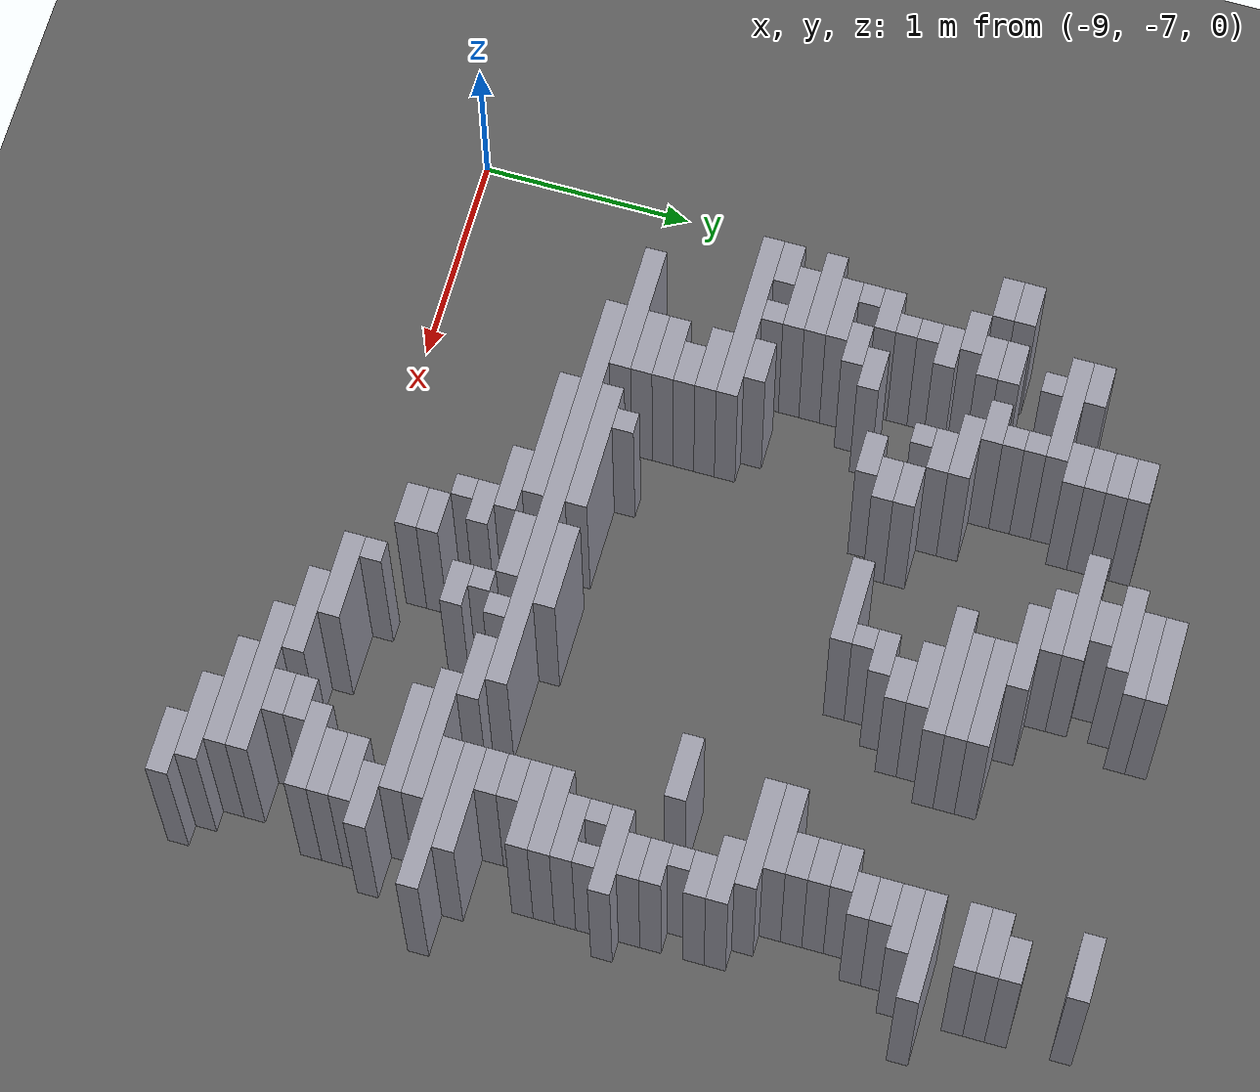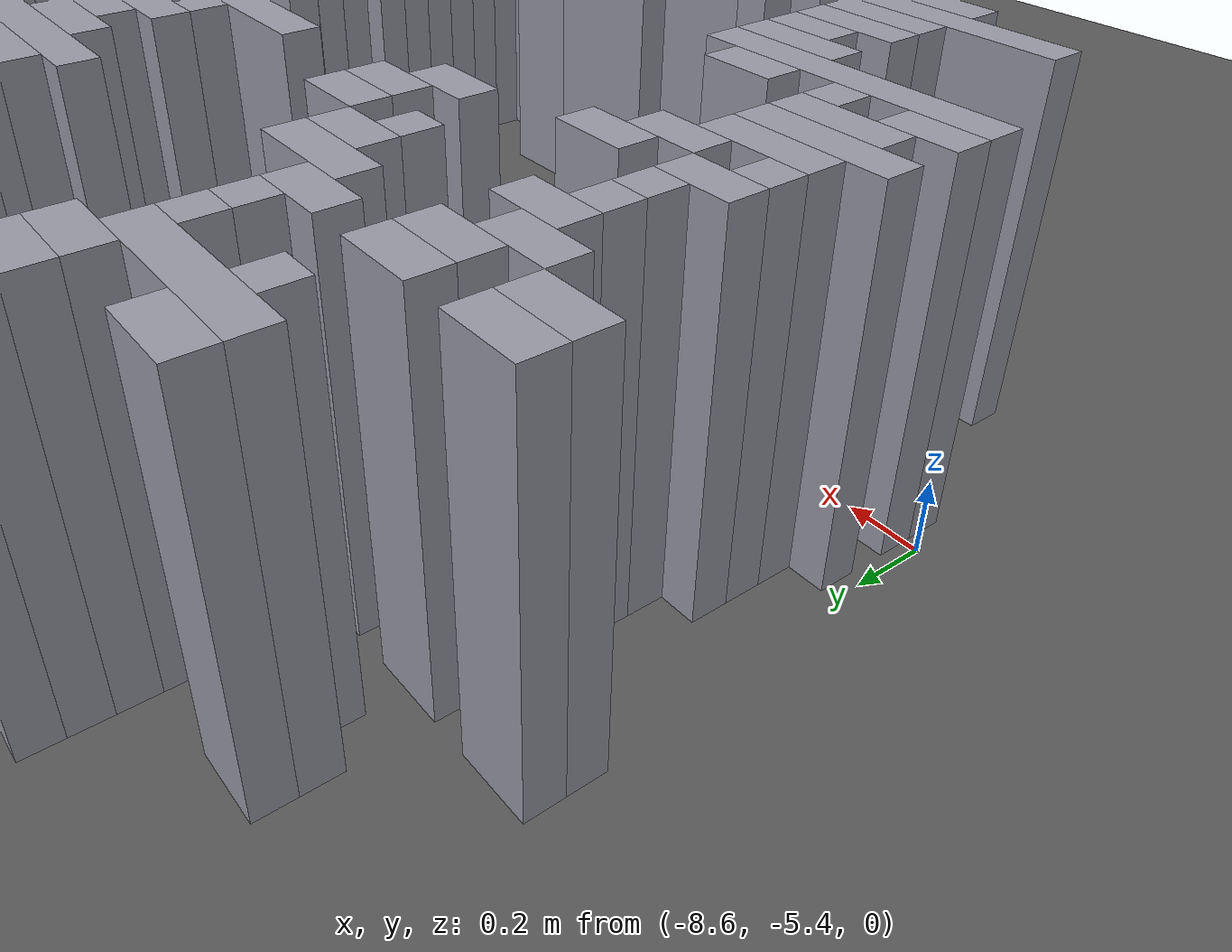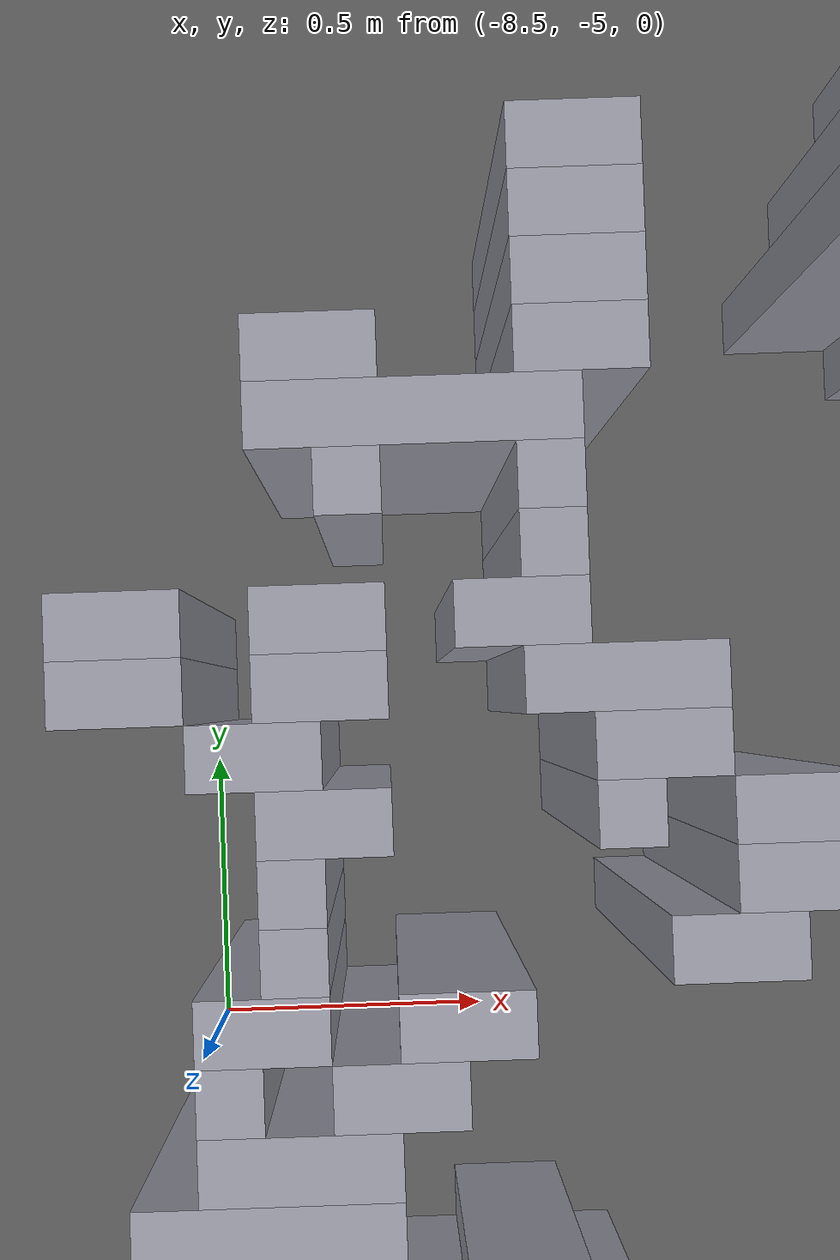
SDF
<sdf version="1.8">
 <world name="dimi">
  <model name="ground">
   <static>true</static>
   <link name="ground_link">
    <collision name="c"><geometry><plane><normal>0 0 1</normal><size>60 60</size></plane></geometry></collision>
    <visual name="v">
     <geometry><plane><normal>0 0 1</normal><size>60 60</size></plane></geometry>
     <material><ambient>0.3 0.3 0.3 1</ambient><diffuse>0.35 0.35 0.35 1</diffuse></material>
    </visual>
   </link>
  </model>
  <model name="walls">
   <static>true</static>
   <link name="wall_341">
    <pose>-7.0610 -3.2710 0.5000 0 0 0</pose>
    <collision name="c"><geometry><box><size>0.4000 0.1000 1.0000</size></box></geometry></collision>
    <visual name="v">
     <geometry><box><size>0.4000 0.1000 1.0000</size></box></geometry>
     <material><ambient>0.5 0.5 0.55 1</ambient><diffuse>0.6 0.6 0.65 1</diffuse></material>
    </visual>
   </link>
   <link name="wall_342">
    <pose>-5.6110 -3.2710 0.5000 0 0 0</pose>
    <collision name="c"><geometry><box><size>0.3000 0.1000 1.0000</size></box></geometry></collision>
    <visual name="v">
     <geometry><box><size>0.3000 0.1000 1.0000</size></box></geometry>
     <material><ambient>0.5 0.5 0.55 1</ambient><diffuse>0.6 0.6 0.65 1</diffuse></material>
    </visual>
   </link>
   <link name="wall_345">
    <pose>-7.0610 -3.3710 0.5000 0 0 0</pose>
    <collision name="c"><geometry><box><size>0.4000 0.1000 1.0000</size></box></geometry></collision>
    <visual name="v">
     <geometry><box><size>0.4000 0.1000 1.0000</size></box></geometry>
     <material><ambient>0.5 0.5 0.55 1</ambient><diffuse>0.6 0.6 0.65 1</diffuse></material>
    </visual>
   </link>
   <link name="wall_351">
    <pose>-7.1610 -3.4710 0.5000 0 0 0</pose>
    <collision name="c"><geometry><box><size>0.4000 0.1000 1.0000</size></box></geometry></collision>
    <visual name="v">
     <geometry><box><size>0.4000 0.1000 1.0000</size></box></geometry>
     <material><ambient>0.5 0.5 0.55 1</ambient><diffuse>0.6 0.6 0.65 1</diffuse></material>
    </visual>
   </link>
   <link name="wall_357">
    <pose>-7.8610 -3.5710 0.5000 0 0 0</pose>
    <collision name="c"><geometry><box><size>0.2000 0.1000 1.0000</size></box></geometry></collision>
    <visual name="v">
     <geometry><box><size>0.2000 0.1000 1.0000</size></box></geometry>
     <material><ambient>0.5 0.5 0.55 1</ambient><diffuse>0.6 0.6 0.65 1</diffuse></material>
    </visual>
   </link>
   <link name="wall_358">
    <pose>-7.1610 -3.5710 0.5000 0 0 0</pose>
    <collision name="c"><geometry><box><size>0.2000 0.1000 1.0000</size></box></geometry></collision>
    <visual name="v">
     <geometry><box><size>0.2000 0.1000 1.0000</size></box></geometry>
     <material><ambient>0.5 0.5 0.55 1</ambient><diffuse>0.6 0.6 0.65 1</diffuse></material>
    </visual>
   </link>
   <link name="wall_359">
    <pose>-5.5610 -3.5710 0.5000 0 0 0</pose>
    <collision name="c"><geometry><box><size>0.2000 0.1000 1.0000</size></box></geometry></collision>
    <visual name="v">
     <geometry><box><size>0.2000 0.1000 1.0000</size></box></geometry>
     <material><ambient>0.5 0.5 0.55 1</ambient><diffuse>0.6 0.6 0.65 1</diffuse></material>
    </visual>
   </link>
   <link name="wall_364">
    <pose>-7.8610 -3.6710 0.5000 0 0 0</pose>
    <collision name="c"><geometry><box><size>0.2000 0.1000 1.0000</size></box></geometry></collision>
    <visual name="v">
     <geometry><box><size>0.2000 0.1000 1.0000</size></box></geometry>
     <material><ambient>0.5 0.5 0.55 1</ambient><diffuse>0.6 0.6 0.65 1</diffuse></material>
    </visual>
   </link>
   <link name="wall_365">
    <pose>-7.2110 -3.6710 0.5000 0 0 0</pose>
    <collision name="c"><geometry><box><size>0.5000 0.1000 1.0000</size></box></geometry></collision>
    <visual name="v">
     <geometry><box><size>0.5000 0.1000 1.0000</size></box></geometry>
     <material><ambient>0.5 0.5 0.55 1</ambient><diffuse>0.6 0.6 0.65 1</diffuse></material>
    </visual>
   </link>
   <link name="wall_366">
    <pose>-5.6110 -3.6710 0.5000 0 0 0</pose>
    <collision name="c"><geometry><box><size>0.3000 0.1000 1.0000</size></box></geometry></collision>
    <visual name="v">
     <geometry><box><size>0.3000 0.1000 1.0000</size></box></geometry>
     <material><ambient>0.5 0.5 0.55 1</ambient><diffuse>0.6 0.6 0.65 1</diffuse></material>
    </visual>
   </link>
   <link name="wall_371">
    <pose>-7.8610 -3.7710 0.5000 0 0 0</pose>
    <collision name="c"><geometry><box><size>0.2000 0.1000 1.0000</size></box></geometry></collision>
    <visual name="v">
     <geometry><box><size>0.2000 0.1000 1.0000</size></box></geometry>
     <material><ambient>0.5 0.5 0.55 1</ambient><diffuse>0.6 0.6 0.65 1</diffuse></material>
    </visual>
   </link>
   <link name="wall_372">
    <pose>-7.1110 -3.7710 0.5000 0 0 0</pose>
    <collision name="c"><geometry><box><size>0.3000 0.1000 1.0000</size></box></geometry></collision>
    <visual name="v">
     <geometry><box><size>0.3000 0.1000 1.0000</size></box></geometry>
     <material><ambient>0.5 0.5 0.55 1</ambient><diffuse>0.6 0.6 0.65 1</diffuse></material>
    </visual>
   </link>
   <link name="wall_373">
    <pose>-5.6110 -3.7710 0.5000 0 0 0</pose>
    <collision name="c"><geometry><box><size>0.3000 0.1000 1.0000</size></box></geometry></collision>
    <visual name="v">
     <geometry><box><size>0.3000 0.1000 1.0000</size></box></geometry>
     <material><ambient>0.5 0.5 0.55 1</ambient><diffuse>0.6 0.6 0.65 1</diffuse></material>
    </visual>
   </link>
   <link name="wall_379">
    <pose>-8.2610 -3.8710 0.5000 0 0 0</pose>
    <collision name="c"><geometry><box><size>0.2000 0.1000 1.0000</size></box></geometry></collision>
    <visual name="v">
     <geometry><box><size>0.2000 0.1000 1.0000</size></box></geometry>
     <material><ambient>0.5 0.5 0.55 1</ambient><diffuse>0.6 0.6 0.65 1</diffuse></material>
    </visual>
   </link>
   <link name="wall_380">
    <pose>-7.8610 -3.8710 0.5000 0 0 0</pose>
    <collision name="c"><geometry><box><size>0.2000 0.1000 1.0000</size></box></geometry></collision>
    <visual name="v">
     <geometry><box><size>0.2000 0.1000 1.0000</size></box></geometry>
     <material><ambient>0.5 0.5 0.55 1</ambient><diffuse>0.6 0.6 0.65 1</diffuse></material>
    </visual>
   </link>
   <link name="wall_381">
    <pose>-6.9610 -3.8710 0.5000 0 0 0</pose>
    <collision name="c"><geometry><box><size>0.4000 0.1000 1.0000</size></box></geometry></collision>
    <visual name="v">
     <geometry><box><size>0.4000 0.1000 1.0000</size></box></geometry>
     <material><ambient>0.5 0.5 0.55 1</ambient><diffuse>0.6 0.6 0.65 1</diffuse></material>
    </visual>
   </link>
   <link name="wall_387">
    <pose>-8.1110 -3.9710 0.5000 0 0 0</pose>
    <collision name="c"><geometry><box><size>0.5000 0.1000 1.0000</size></box></geometry></collision>
    <visual name="v">
     <geometry><box><size>0.5000 0.1000 1.0000</size></box></geometry>
     <material><ambient>0.5 0.5 0.55 1</ambient><diffuse>0.6 0.6 0.65 1</diffuse></material>
    </visual>
   </link>
   <link name="wall_388">
    <pose>-6.7110 -3.9710 0.5000 0 0 0</pose>
    <collision name="c"><geometry><box><size>0.5000 0.1000 1.0000</size></box></geometry></collision>
    <visual name="v">
     <geometry><box><size>0.5000 0.1000 1.0000</size></box></geometry>
     <material><ambient>0.5 0.5 0.55 1</ambient><diffuse>0.6 0.6 0.65 1</diffuse></material>
    </visual>
   </link>
   <link name="wall_389">
    <pose>-5.5110 -3.9710 0.5000 0 0 0</pose>
    <collision name="c"><geometry><box><size>0.5000 0.1000 1.0000</size></box></geometry></collision>
    <visual name="v">
     <geometry><box><size>0.5000 0.1000 1.0000</size></box></geometry>
     <material><ambient>0.5 0.5 0.55 1</ambient><diffuse>0.6 0.6 0.65 1</diffuse></material>
    </visual>
   </link>
   <link name="wall_394">
    <pose>-8.2110 -4.0710 0.5000 0 0 0</pose>
    <collision name="c"><geometry><box><size>0.1000 0.1000 1.0000</size></box></geometry></collision>
    <visual name="v">
     <geometry><box><size>0.1000 0.1000 1.0000</size></box></geometry>
     <material><ambient>0.5 0.5 0.55 1</ambient><diffuse>0.6 0.6 0.65 1</diffuse></material>
    </visual>
   </link>
   <link name="wall_395">
    <pose>-7.9110 -4.0710 0.5000 0 0 0</pose>
    <collision name="c"><geometry><box><size>0.1000 0.1000 1.0000</size></box></geometry></collision>
    <visual name="v">
     <geometry><box><size>0.1000 0.1000 1.0000</size></box></geometry>
     <material><ambient>0.5 0.5 0.55 1</ambient><diffuse>0.6 0.6 0.65 1</diffuse></material>
    </visual>
   </link>
   <link name="wall_396">
    <pose>-6.7110 -4.0710 0.5000 0 0 0</pose>
    <collision name="c"><geometry><box><size>0.5000 0.1000 1.0000</size></box></geometry></collision>
    <visual name="v">
     <geometry><box><size>0.5000 0.1000 1.0000</size></box></geometry>
     <material><ambient>0.5 0.5 0.55 1</ambient><diffuse>0.6 0.6 0.65 1</diffuse></material>
    </visual>
   </link>
   <link name="wall_397">
    <pose>-5.6110 -4.0710 0.5000 0 0 0</pose>
    <collision name="c"><geometry><box><size>0.3000 0.1000 1.0000</size></box></geometry></collision>
    <visual name="v">
     <geometry><box><size>0.3000 0.1000 1.0000</size></box></geometry>
     <material><ambient>0.5 0.5 0.55 1</ambient><diffuse>0.6 0.6 0.65 1</diffuse></material>
    </visual>
   </link>
   <link name="wall_401">
    <pose>-7.9110 -4.1710 0.5000 0 0 0</pose>
    <collision name="c"><geometry><box><size>0.1000 0.1000 1.0000</size></box></geometry></collision>
    <visual name="v">
     <geometry><box><size>0.1000 0.1000 1.0000</size></box></geometry>
     <material><ambient>0.5 0.5 0.55 1</ambient><diffuse>0.6 0.6 0.65 1</diffuse></material>
    </visual>
   </link>
   <link name="wall_402">
    <pose>-6.7610 -4.1710 0.5000 0 0 0</pose>
    <collision name="c"><geometry><box><size>0.6000 0.1000 1.0000</size></box></geometry></collision>
    <visual name="v">
     <geometry><box><size>0.6000 0.1000 1.0000</size></box></geometry>
     <material><ambient>0.5 0.5 0.55 1</ambient><diffuse>0.6 0.6 0.65 1</diffuse></material>
    </visual>
   </link>
   <link name="wall_403">
    <pose>-5.6610 -4.1710 0.5000 0 0 0</pose>
    <collision name="c"><geometry><box><size>0.2000 0.1000 1.0000</size></box></geometry></collision>
    <visual name="v">
     <geometry><box><size>0.2000 0.1000 1.0000</size></box></geometry>
     <material><ambient>0.5 0.5 0.55 1</ambient><diffuse>0.6 0.6 0.65 1</diffuse></material>
    </visual>
   </link>
   <link name="wall_407">
    <pose>-8.5610 -4.2710 0.5000 0 0 0</pose>
    <collision name="c"><geometry><box><size>0.2000 0.1000 1.0000</size></box></geometry></collision>
    <visual name="v">
     <geometry><box><size>0.2000 0.1000 1.0000</size></box></geometry>
     <material><ambient>0.5 0.5 0.55 1</ambient><diffuse>0.6 0.6 0.65 1</diffuse></material>
    </visual>
   </link>
   <link name="wall_408">
    <pose>-8.2610 -4.2710 0.5000 0 0 0</pose>
    <collision name="c"><geometry><box><size>0.2000 0.1000 1.0000</size></box></geometry></collision>
    <visual name="v">
     <geometry><box><size>0.2000 0.1000 1.0000</size></box></geometry>
     <material><ambient>0.5 0.5 0.55 1</ambient><diffuse>0.6 0.6 0.65 1</diffuse></material>
    </visual>
   </link>
   <link name="wall_409">
    <pose>-7.9610 -4.2710 0.5000 0 0 0</pose>
    <collision name="c"><geometry><box><size>0.2000 0.1000 1.0000</size></box></geometry></collision>
    <visual name="v">
     <geometry><box><size>0.2000 0.1000 1.0000</size></box></geometry>
     <material><ambient>0.5 0.5 0.55 1</ambient><diffuse>0.6 0.6 0.65 1</diffuse></material>
    </visual>
   </link>
   <link name="wall_410">
    <pose>-6.7110 -4.2710 0.5000 0 0 0</pose>
    <collision name="c"><geometry><box><size>0.3000 0.1000 1.0000</size></box></geometry></collision>
    <visual name="v">
     <geometry><box><size>0.3000 0.1000 1.0000</size></box></geometry>
     <material><ambient>0.5 0.5 0.55 1</ambient><diffuse>0.6 0.6 0.65 1</diffuse></material>
    </visual>
   </link>
   <link name="wall_411">
    <pose>-5.6610 -4.2710 0.5000 0 0 0</pose>
    <collision name="c"><geometry><box><size>0.2000 0.1000 1.0000</size></box></geometry></collision>
    <visual name="v">
     <geometry><box><size>0.2000 0.1000 1.0000</size></box></geometry>
     <material><ambient>0.5 0.5 0.55 1</ambient><diffuse>0.6 0.6 0.65 1</diffuse></material>
    </visual>
   </link>
   <link name="wall_414">
    <pose>-8.5610 -4.3710 0.5000 0 0 0</pose>
    <collision name="c"><geometry><box><size>0.2000 0.1000 1.0000</size></box></geometry></collision>
    <visual name="v">
     <geometry><box><size>0.2000 0.1000 1.0000</size></box></geometry>
     <material><ambient>0.5 0.5 0.55 1</ambient><diffuse>0.6 0.6 0.65 1</diffuse></material>
    </visual>
   </link>
   <link name="wall_415">
    <pose>-8.2610 -4.3710 0.5000 0 0 0</pose>
    <collision name="c"><geometry><box><size>0.2000 0.1000 1.0000</size></box></geometry></collision>
    <visual name="v">
     <geometry><box><size>0.2000 0.1000 1.0000</size></box></geometry>
     <material><ambient>0.5 0.5 0.55 1</ambient><diffuse>0.6 0.6 0.65 1</diffuse></material>
    </visual>
   </link>
   <link name="wall_416">
    <pose>-7.8110 -4.3710 0.5000 0 0 0</pose>
    <collision name="c"><geometry><box><size>0.3000 0.1000 1.0000</size></box></geometry></collision>
    <visual name="v">
     <geometry><box><size>0.3000 0.1000 1.0000</size></box></geometry>
     <material><ambient>0.5 0.5 0.55 1</ambient><diffuse>0.6 0.6 0.65 1</diffuse></material>
    </visual>
   </link>
   <link name="wall_417">
    <pose>-6.6610 -4.3710 0.5000 0 0 0</pose>
    <collision name="c"><geometry><box><size>0.2000 0.1000 1.0000</size></box></geometry></collision>
    <visual name="v">
     <geometry><box><size>0.2000 0.1000 1.0000</size></box></geometry>
     <material><ambient>0.5 0.5 0.55 1</ambient><diffuse>0.6 0.6 0.65 1</diffuse></material>
    </visual>
   </link>
   <link name="wall_418">
    <pose>-5.7610 -4.3710 0.5000 0 0 0</pose>
    <collision name="c"><geometry><box><size>0.2000 0.1000 1.0000</size></box></geometry></collision>
    <visual name="v">
     <geometry><box><size>0.2000 0.1000 1.0000</size></box></geometry>
     <material><ambient>0.5 0.5 0.55 1</ambient><diffuse>0.6 0.6 0.65 1</diffuse></material>
    </visual>
   </link>
   <link name="wall_422">
    <pose>-8.3610 -4.4710 0.5000 0 0 0</pose>
    <collision name="c"><geometry><box><size>0.2000 0.1000 1.0000</size></box></geometry></collision>
    <visual name="v">
     <geometry><box><size>0.2000 0.1000 1.0000</size></box></geometry>
     <material><ambient>0.5 0.5 0.55 1</ambient><diffuse>0.6 0.6 0.65 1</diffuse></material>
    </visual>
   </link>
   <link name="wall_423">
    <pose>-7.7610 -4.4710 0.5000 0 0 0</pose>
    <collision name="c"><geometry><box><size>0.2000 0.1000 1.0000</size></box></geometry></collision>
    <visual name="v">
     <geometry><box><size>0.2000 0.1000 1.0000</size></box></geometry>
     <material><ambient>0.5 0.5 0.55 1</ambient><diffuse>0.6 0.6 0.65 1</diffuse></material>
    </visual>
   </link>
   <link name="wall_424">
    <pose>-6.7610 -4.4710 0.5000 0 0 0</pose>
    <collision name="c"><geometry><box><size>0.2000 0.1000 1.0000</size></box></geometry></collision>
    <visual name="v">
     <geometry><box><size>0.2000 0.1000 1.0000</size></box></geometry>
     <material><ambient>0.5 0.5 0.55 1</ambient><diffuse>0.6 0.6 0.65 1</diffuse></material>
    </visual>
   </link>
   <link name="wall_425">
    <pose>-5.7610 -4.4710 0.5000 0 0 0</pose>
    <collision name="c"><geometry><box><size>0.2000 0.1000 1.0000</size></box></geometry></collision>
    <visual name="v">
     <geometry><box><size>0.2000 0.1000 1.0000</size></box></geometry>
     <material><ambient>0.5 0.5 0.55 1</ambient><diffuse>0.6 0.6 0.65 1</diffuse></material>
    </visual>
   </link>
   <link name="wall_428">
    <pose>-8.2610 -4.5710 0.5000 0 0 0</pose>
    <collision name="c"><geometry><box><size>0.2000 0.1000 1.0000</size></box></geometry></collision>
    <visual name="v">
     <geometry><box><size>0.2000 0.1000 1.0000</size></box></geometry>
     <material><ambient>0.5 0.5 0.55 1</ambient><diffuse>0.6 0.6 0.65 1</diffuse></material>
    </visual>
   </link>
   <link name="wall_429">
    <pose>-7.8110 -4.5710 0.5000 0 0 0</pose>
    <collision name="c"><geometry><box><size>0.1000 0.1000 1.0000</size></box></geometry></collision>
    <visual name="v">
     <geometry><box><size>0.1000 0.1000 1.0000</size></box></geometry>
     <material><ambient>0.5 0.5 0.55 1</ambient><diffuse>0.6 0.6 0.65 1</diffuse></material>
    </visual>
   </link>
   <link name="wall_430">
    <pose>-7.5610 -4.5710 0.5000 0 0 0</pose>
    <collision name="c"><geometry><box><size>0.2000 0.1000 1.0000</size></box></geometry></collision>
    <visual name="v">
     <geometry><box><size>0.2000 0.1000 1.0000</size></box></geometry>
     <material><ambient>0.5 0.5 0.55 1</ambient><diffuse>0.6 0.6 0.65 1</diffuse></material>
    </visual>
   </link>
   <link name="wall_431">
    <pose>-6.8110 -4.5710 0.5000 0 0 0</pose>
    <collision name="c"><geometry><box><size>0.1000 0.1000 1.0000</size></box></geometry></collision>
    <visual name="v">
     <geometry><box><size>0.1000 0.1000 1.0000</size></box></geometry>
     <material><ambient>0.5 0.5 0.55 1</ambient><diffuse>0.6 0.6 0.65 1</diffuse></material>
    </visual>
   </link>
   <link name="wall_432">
    <pose>-5.7610 -4.5710 0.5000 0 0 0</pose>
    <collision name="c"><geometry><box><size>0.2000 0.1000 1.0000</size></box></geometry></collision>
    <visual name="v">
     <geometry><box><size>0.2000 0.1000 1.0000</size></box></geometry>
     <material><ambient>0.5 0.5 0.55 1</ambient><diffuse>0.6 0.6 0.65 1</diffuse></material>
    </visual>
   </link>
   <link name="wall_436">
    <pose>-8.3110 -4.6710 0.5000 0 0 0</pose>
    <collision name="c"><geometry><box><size>0.1000 0.1000 1.0000</size></box></geometry></collision>
    <visual name="v">
     <geometry><box><size>0.1000 0.1000 1.0000</size></box></geometry>
     <material><ambient>0.5 0.5 0.55 1</ambient><diffuse>0.6 0.6 0.65 1</diffuse></material>
    </visual>
   </link>
   <link name="wall_437">
    <pose>-7.5610 -4.6710 0.5000 0 0 0</pose>
    <collision name="c"><geometry><box><size>0.2000 0.1000 1.0000</size></box></geometry></collision>
    <visual name="v">
     <geometry><box><size>0.2000 0.1000 1.0000</size></box></geometry>
     <material><ambient>0.5 0.5 0.55 1</ambient><diffuse>0.6 0.6 0.65 1</diffuse></material>
    </visual>
   </link>
   <link name="wall_438">
    <pose>-6.9610 -4.6710 0.5000 0 0 0</pose>
    <collision name="c"><geometry><box><size>0.4000 0.1000 1.0000</size></box></geometry></collision>
    <visual name="v">
     <geometry><box><size>0.4000 0.1000 1.0000</size></box></geometry>
     <material><ambient>0.5 0.5 0.55 1</ambient><diffuse>0.6 0.6 0.65 1</diffuse></material>
    </visual>
   </link>
   <link name="wall_439">
    <pose>-5.8610 -4.6710 0.5000 0 0 0</pose>
    <collision name="c"><geometry><box><size>0.4000 0.1000 1.0000</size></box></geometry></collision>
    <visual name="v">
     <geometry><box><size>0.4000 0.1000 1.0000</size></box></geometry>
     <material><ambient>0.5 0.5 0.55 1</ambient><diffuse>0.6 0.6 0.65 1</diffuse></material>
    </visual>
   </link>
   <link name="wall_443">
    <pose>-8.3110 -4.7710 0.5000 0 0 0</pose>
    <collision name="c"><geometry><box><size>0.1000 0.1000 1.0000</size></box></geometry></collision>
    <visual name="v">
     <geometry><box><size>0.1000 0.1000 1.0000</size></box></geometry>
     <material><ambient>0.5 0.5 0.55 1</ambient><diffuse>0.6 0.6 0.65 1</diffuse></material>
    </visual>
   </link>
   <link name="wall_444">
    <pose>-7.6610 -4.7710 0.5000 0 0 0</pose>
    <collision name="c"><geometry><box><size>0.2000 0.1000 1.0000</size></box></geometry></collision>
    <visual name="v">
     <geometry><box><size>0.2000 0.1000 1.0000</size></box></geometry>
     <material><ambient>0.5 0.5 0.55 1</ambient><diffuse>0.6 0.6 0.65 1</diffuse></material>
    </visual>
   </link>
   <link name="wall_445">
    <pose>-5.8110 -4.7710 0.5000 0 0 0</pose>
    <collision name="c"><geometry><box><size>0.5000 0.1000 1.0000</size></box></geometry></collision>
    <visual name="v">
     <geometry><box><size>0.5000 0.1000 1.0000</size></box></geometry>
     <material><ambient>0.5 0.5 0.55 1</ambient><diffuse>0.6 0.6 0.65 1</diffuse></material>
    </visual>
   </link>
   <link name="wall_448">
    <pose>-8.3610 -4.8710 0.5000 0 0 0</pose>
    <collision name="c"><geometry><box><size>0.2000 0.1000 1.0000</size></box></geometry></collision>
    <visual name="v">
     <geometry><box><size>0.2000 0.1000 1.0000</size></box></geometry>
     <material><ambient>0.5 0.5 0.55 1</ambient><diffuse>0.6 0.6 0.65 1</diffuse></material>
    </visual>
   </link>
   <link name="wall_449">
    <pose>-8.0610 -4.8710 0.5000 0 0 0</pose>
    <collision name="c"><geometry><box><size>0.2000 0.1000 1.0000</size></box></geometry></collision>
    <visual name="v">
     <geometry><box><size>0.2000 0.1000 1.0000</size></box></geometry>
     <material><ambient>0.5 0.5 0.55 1</ambient><diffuse>0.6 0.6 0.65 1</diffuse></material>
    </visual>
   </link>
   <link name="wall_450">
    <pose>-5.6110 -4.8710 0.5000 0 0 0</pose>
    <collision name="c"><geometry><box><size>0.3000 0.1000 1.0000</size></box></geometry></collision>
    <visual name="v">
     <geometry><box><size>0.3000 0.1000 1.0000</size></box></geometry>
     <material><ambient>0.5 0.5 0.55 1</ambient><diffuse>0.6 0.6 0.65 1</diffuse></material>
    </visual>
   </link>
   <link name="wall_453">
    <pose>-8.4110 -4.9710 0.5000 0 0 0</pose>
    <collision name="c"><geometry><box><size>0.1000 0.1000 1.0000</size></box></geometry></collision>
    <visual name="v">
     <geometry><box><size>0.1000 0.1000 1.0000</size></box></geometry>
     <material><ambient>0.5 0.5 0.55 1</ambient><diffuse>0.6 0.6 0.65 1</diffuse></material>
    </visual>
   </link>
   <link name="wall_454">
    <pose>-8.1610 -4.9710 0.5000 0 0 0</pose>
    <collision name="c"><geometry><box><size>0.2000 0.1000 1.0000</size></box></geometry></collision>
    <visual name="v">
     <geometry><box><size>0.2000 0.1000 1.0000</size></box></geometry>
     <material><ambient>0.5 0.5 0.55 1</ambient><diffuse>0.6 0.6 0.65 1</diffuse></material>
    </visual>
   </link>
   <link name="wall_455">
    <pose>-5.5610 -4.9710 0.5000 0 0 0</pose>
    <collision name="c"><geometry><box><size>0.2000 0.1000 1.0000</size></box></geometry></collision>
    <visual name="v">
     <geometry><box><size>0.2000 0.1000 1.0000</size></box></geometry>
     <material><ambient>0.5 0.5 0.55 1</ambient><diffuse>0.6 0.6 0.65 1</diffuse></material>
    </visual>
   </link>
   <link name="wall_459">
    <pose>-8.3110 -5.0710 0.5000 0 0 0</pose>
    <collision name="c"><geometry><box><size>0.3000 0.1000 1.0000</size></box></geometry></collision>
    <visual name="v">
     <geometry><box><size>0.3000 0.1000 1.0000</size></box></geometry>
     <material><ambient>0.5 0.5 0.55 1</ambient><diffuse>0.6 0.6 0.65 1</diffuse></material>
    </visual>
   </link>
   <link name="wall_460">
    <pose>-5.6110 -5.0710 0.5000 0 0 0</pose>
    <collision name="c"><geometry><box><size>0.1000 0.1000 1.0000</size></box></geometry></collision>
    <visual name="v">
     <geometry><box><size>0.1000 0.1000 1.0000</size></box></geometry>
     <material><ambient>0.5 0.5 0.55 1</ambient><diffuse>0.6 0.6 0.65 1</diffuse></material>
    </visual>
   </link>
   <link name="wall_464">
    <pose>-8.3610 -5.1710 0.5000 0 0 0</pose>
    <collision name="c"><geometry><box><size>0.4000 0.1000 1.0000</size></box></geometry></collision>
    <visual name="v">
     <geometry><box><size>0.4000 0.1000 1.0000</size></box></geometry>
     <material><ambient>0.5 0.5 0.55 1</ambient><diffuse>0.6 0.6 0.65 1</diffuse></material>
    </visual>
   </link>
   <link name="wall_465">
    <pose>-6.0110 -5.1710 0.5000 0 0 0</pose>
    <collision name="c"><geometry><box><size>0.3000 0.1000 1.0000</size></box></geometry></collision>
    <visual name="v">
     <geometry><box><size>0.3000 0.1000 1.0000</size></box></geometry>
     <material><ambient>0.5 0.5 0.55 1</ambient><diffuse>0.6 0.6 0.65 1</diffuse></material>
    </visual>
   </link>
   <link name="wall_466">
    <pose>-5.5610 -5.1710 0.5000 0 0 0</pose>
    <collision name="c"><geometry><box><size>0.2000 0.1000 1.0000</size></box></geometry></collision>
    <visual name="v">
     <geometry><box><size>0.2000 0.1000 1.0000</size></box></geometry>
     <material><ambient>0.5 0.5 0.55 1</ambient><diffuse>0.6 0.6 0.65 1</diffuse></material>
    </visual>
   </link>
   <link name="wall_471">
    <pose>-8.3110 -5.2710 0.5000 0 0 0</pose>
    <collision name="c"><geometry><box><size>0.3000 0.1000 1.0000</size></box></geometry></collision>
    <visual name="v">
     <geometry><box><size>0.3000 0.1000 1.0000</size></box></geometry>
     <material><ambient>0.5 0.5 0.55 1</ambient><diffuse>0.6 0.6 0.65 1</diffuse></material>
    </visual>
   </link>
   <link name="wall_472">
    <pose>-5.5610 -5.2710 0.5000 0 0 0</pose>
    <collision name="c"><geometry><box><size>0.2000 0.1000 1.0000</size></box></geometry></collision>
    <visual name="v">
     <geometry><box><size>0.2000 0.1000 1.0000</size></box></geometry>
     <material><ambient>0.5 0.5 0.55 1</ambient><diffuse>0.6 0.6 0.65 1</diffuse></material>
    </visual>
   </link>
   <link name="wall_477">
    <pose>-8.4610 -5.3710 0.5000 0 0 0</pose>
    <collision name="c"><geometry><box><size>0.2000 0.1000 1.0000</size></box></geometry></collision>
    <visual name="v">
     <geometry><box><size>0.2000 0.1000 1.0000</size></box></geometry>
     <material><ambient>0.5 0.5 0.55 1</ambient><diffuse>0.6 0.6 0.65 1</diffuse></material>
    </visual>
   </link>
   <link name="wall_478">
    <pose>-8.2110 -5.3710 0.5000 0 0 0</pose>
    <collision name="c"><geometry><box><size>0.1000 0.1000 1.0000</size></box></geometry></collision>
    <visual name="v">
     <geometry><box><size>0.1000 0.1000 1.0000</size></box></geometry>
     <material><ambient>0.5 0.5 0.55 1</ambient><diffuse>0.6 0.6 0.65 1</diffuse></material>
    </visual>
   </link>
   <link name="wall_479">
    <pose>-7.9610 -5.3710 0.5000 0 0 0</pose>
    <collision name="c"><geometry><box><size>0.2000 0.1000 1.0000</size></box></geometry></collision>
    <visual name="v">
     <geometry><box><size>0.2000 0.1000 1.0000</size></box></geometry>
     <material><ambient>0.5 0.5 0.55 1</ambient><diffuse>0.6 0.6 0.65 1</diffuse></material>
    </visual>
   </link>
   <link name="wall_480">
    <pose>-5.5610 -5.3710 0.5000 0 0 0</pose>
    <collision name="c"><geometry><box><size>0.4000 0.1000 1.0000</size></box></geometry></collision>
    <visual name="v">
     <geometry><box><size>0.4000 0.1000 1.0000</size></box></geometry>
     <material><ambient>0.5 0.5 0.55 1</ambient><diffuse>0.6 0.6 0.65 1</diffuse></material>
    </visual>
   </link>
   <link name="wall_486">
    <pose>-8.1610 -5.4710 0.5000 0 0 0</pose>
    <collision name="c"><geometry><box><size>0.8000 0.1000 1.0000</size></box></geometry></collision>
    <visual name="v">
     <geometry><box><size>0.8000 0.1000 1.0000</size></box></geometry>
     <material><ambient>0.5 0.5 0.55 1</ambient><diffuse>0.6 0.6 0.65 1</diffuse></material>
    </visual>
   </link>
   <link name="wall_487">
    <pose>-5.7110 -5.4710 0.5000 0 0 0</pose>
    <collision name="c"><geometry><box><size>0.1000 0.1000 1.0000</size></box></geometry></collision>
    <visual name="v">
     <geometry><box><size>0.1000 0.1000 1.0000</size></box></geometry>
     <material><ambient>0.5 0.5 0.55 1</ambient><diffuse>0.6 0.6 0.65 1</diffuse></material>
    </visual>
   </link>
   <link name="wall_488">
    <pose>-5.5110 -5.4710 0.5000 0 0 0</pose>
    <collision name="c"><geometry><box><size>0.1000 0.1000 1.0000</size></box></geometry></collision>
    <visual name="v">
     <geometry><box><size>0.1000 0.1000 1.0000</size></box></geometry>
     <material><ambient>0.5 0.5 0.55 1</ambient><diffuse>0.6 0.6 0.65 1</diffuse></material>
    </visual>
   </link>
   <link name="wall_495">
    <pose>-7.9110 -5.5710 0.5000 0 0 0</pose>
    <collision name="c"><geometry><box><size>0.3000 0.1000 1.0000</size></box></geometry></collision>
    <visual name="v">
     <geometry><box><size>0.3000 0.1000 1.0000</size></box></geometry>
     <material><ambient>0.5 0.5 0.55 1</ambient><diffuse>0.6 0.6 0.65 1</diffuse></material>
    </visual>
   </link>
   <link name="wall_496">
    <pose>-5.6110 -5.5710 0.5000 0 0 0</pose>
    <collision name="c"><geometry><box><size>0.3000 0.1000 1.0000</size></box></geometry></collision>
    <visual name="v">
     <geometry><box><size>0.3000 0.1000 1.0000</size></box></geometry>
     <material><ambient>0.5 0.5 0.55 1</ambient><diffuse>0.6 0.6 0.65 1</diffuse></material>
    </visual>
   </link>
   <link name="wall_504">
    <pose>-7.8610 -5.6710 0.5000 0 0 0</pose>
    <collision name="c"><geometry><box><size>0.2000 0.1000 1.0000</size></box></geometry></collision>
    <visual name="v">
     <geometry><box><size>0.2000 0.1000 1.0000</size></box></geometry>
     <material><ambient>0.5 0.5 0.55 1</ambient><diffuse>0.6 0.6 0.65 1</diffuse></material>
    </visual>
   </link>
   <link name="wall_505">
    <pose>-5.6610 -5.6710 0.5000 0 0 0</pose>
    <collision name="c"><geometry><box><size>0.4000 0.1000 1.0000</size></box></geometry></collision>
    <visual name="v">
     <geometry><box><size>0.4000 0.1000 1.0000</size></box></geometry>
     <material><ambient>0.5 0.5 0.55 1</ambient><diffuse>0.6 0.6 0.65 1</diffuse></material>
    </visual>
   </link>
   <link name="wall_513">
    <pose>-7.9110 -5.7710 0.5000 0 0 0</pose>
    <collision name="c"><geometry><box><size>0.3000 0.1000 1.0000</size></box></geometry></collision>
    <visual name="v">
     <geometry><box><size>0.3000 0.1000 1.0000</size></box></geometry>
     <material><ambient>0.5 0.5 0.55 1</ambient><diffuse>0.6 0.6 0.65 1</diffuse></material>
    </visual>
   </link>
   <link name="wall_514">
    <pose>-5.6610 -5.7710 0.5000 0 0 0</pose>
    <collision name="c"><geometry><box><size>0.4000 0.1000 1.0000</size></box></geometry></collision>
    <visual name="v">
     <geometry><box><size>0.4000 0.1000 1.0000</size></box></geometry>
     <material><ambient>0.5 0.5 0.55 1</ambient><diffuse>0.6 0.6 0.65 1</diffuse></material>
    </visual>
   </link>
   <link name="wall_521">
    <pose>-7.9110 -5.8710 0.5000 0 0 0</pose>
    <collision name="c"><geometry><box><size>0.3000 0.1000 1.0000</size></box></geometry></collision>
    <visual name="v">
     <geometry><box><size>0.3000 0.1000 1.0000</size></box></geometry>
     <material><ambient>0.5 0.5 0.55 1</ambient><diffuse>0.6 0.6 0.65 1</diffuse></material>
    </visual>
   </link>
   <link name="wall_522">
    <pose>-7.5110 -5.8710 0.5000 0 0 0</pose>
    <collision name="c"><geometry><box><size>0.1000 0.1000 1.0000</size></box></geometry></collision>
    <visual name="v">
     <geometry><box><size>0.1000 0.1000 1.0000</size></box></geometry>
     <material><ambient>0.5 0.5 0.55 1</ambient><diffuse>0.6 0.6 0.65 1</diffuse></material>
    </visual>
   </link>
   <link name="wall_523">
    <pose>-5.7610 -5.8710 0.5000 0 0 0</pose>
    <collision name="c"><geometry><box><size>0.2000 0.1000 1.0000</size></box></geometry></collision>
    <visual name="v">
     <geometry><box><size>0.2000 0.1000 1.0000</size></box></geometry>
     <material><ambient>0.5 0.5 0.55 1</ambient><diffuse>0.6 0.6 0.65 1</diffuse></material>
    </visual>
   </link>
   <link name="wall_528">
    <pose>-8.0610 -5.9710 0.5000 0 0 0</pose>
    <collision name="c"><geometry><box><size>0.6000 0.1000 1.0000</size></box></geometry></collision>
    <visual name="v">
     <geometry><box><size>0.6000 0.1000 1.0000</size></box></geometry>
     <material><ambient>0.5 0.5 0.55 1</ambient><diffuse>0.6 0.6 0.65 1</diffuse></material>
    </visual>
   </link>
   <link name="wall_529">
    <pose>-7.3610 -5.9710 0.5000 0 0 0</pose>
    <collision name="c"><geometry><box><size>0.6000 0.1000 1.0000</size></box></geometry></collision>
    <visual name="v">
     <geometry><box><size>0.6000 0.1000 1.0000</size></box></geometry>
     <material><ambient>0.5 0.5 0.55 1</ambient><diffuse>0.6 0.6 0.65 1</diffuse></material>
    </visual>
   </link>
   <link name="wall_530">
    <pose>-6.7610 -5.9710 0.5000 0 0 0</pose>
    <collision name="c"><geometry><box><size>0.4000 0.1000 1.0000</size></box></geometry></collision>
    <visual name="v">
     <geometry><box><size>0.4000 0.1000 1.0000</size></box></geometry>
     <material><ambient>0.5 0.5 0.55 1</ambient><diffuse>0.6 0.6 0.65 1</diffuse></material>
    </visual>
   </link>
   <link name="wall_531">
    <pose>-5.7610 -5.9710 0.5000 0 0 0</pose>
    <collision name="c"><geometry><box><size>0.2000 0.1000 1.0000</size></box></geometry></collision>
    <visual name="v">
     <geometry><box><size>0.2000 0.1000 1.0000</size></box></geometry>
     <material><ambient>0.5 0.5 0.55 1</ambient><diffuse>0.6 0.6 0.65 1</diffuse></material>
    </visual>
   </link>
   <link name="wall_536">
    <pose>-7.1110 -6.0710 0.5000 0 0 0</pose>
    <collision name="c"><geometry><box><size>1.9000 0.1000 1.0000</size></box></geometry></collision>
    <visual name="v">
     <geometry><box><size>1.9000 0.1000 1.0000</size></box></geometry>
     <material><ambient>0.5 0.5 0.55 1</ambient><diffuse>0.6 0.6 0.65 1</diffuse></material>
    </visual>
   </link>
   <link name="wall_537">
    <pose>-5.6110 -6.0710 0.5000 0 0 0</pose>
    <collision name="c"><geometry><box><size>0.5000 0.1000 1.0000</size></box></geometry></collision>
    <visual name="v">
     <geometry><box><size>0.5000 0.1000 1.0000</size></box></geometry>
     <material><ambient>0.5 0.5 0.55 1</ambient><diffuse>0.6 0.6 0.65 1</diffuse></material>
    </visual>
   </link>
   <link name="wall_543">
    <pose>-7.3610 -6.1710 0.5000 0 0 0</pose>
    <collision name="c"><geometry><box><size>0.6000 0.1000 1.0000</size></box></geometry></collision>
    <visual name="v">
     <geometry><box><size>0.6000 0.1000 1.0000</size></box></geometry>
     <material><ambient>0.5 0.5 0.55 1</ambient><diffuse>0.6 0.6 0.65 1</diffuse></material>
    </visual>
   </link>
   <link name="wall_544">
    <pose>-6.8110 -6.1710 0.5000 0 0 0</pose>
    <collision name="c"><geometry><box><size>0.3000 0.1000 1.0000</size></box></geometry></collision>
    <visual name="v">
     <geometry><box><size>0.3000 0.1000 1.0000</size></box></geometry>
     <material><ambient>0.5 0.5 0.55 1</ambient><diffuse>0.6 0.6 0.65 1</diffuse></material>
    </visual>
   </link>
   <link name="wall_545">
    <pose>-6.5110 -6.1710 0.5000 0 0 0</pose>
    <collision name="c"><geometry><box><size>0.1000 0.1000 1.0000</size></box></geometry></collision>
    <visual name="v">
     <geometry><box><size>0.1000 0.1000 1.0000</size></box></geometry>
     <material><ambient>0.5 0.5 0.55 1</ambient><diffuse>0.6 0.6 0.65 1</diffuse></material>
    </visual>
   </link>
   <link name="wall_546">
    <pose>-6.2110 -6.1710 0.5000 0 0 0</pose>
    <collision name="c"><geometry><box><size>0.3000 0.1000 1.0000</size></box></geometry></collision>
    <visual name="v">
     <geometry><box><size>0.3000 0.1000 1.0000</size></box></geometry>
     <material><ambient>0.5 0.5 0.55 1</ambient><diffuse>0.6 0.6 0.65 1</diffuse></material>
    </visual>
   </link>
   <link name="wall_547">
    <pose>-5.5110 -6.1710 0.5000 0 0 0</pose>
    <collision name="c"><geometry><box><size>0.7000 0.1000 1.0000</size></box></geometry></collision>
    <visual name="v">
     <geometry><box><size>0.7000 0.1000 1.0000</size></box></geometry>
     <material><ambient>0.5 0.5 0.55 1</ambient><diffuse>0.6 0.6 0.65 1</diffuse></material>
    </visual>
   </link>
   <link name="wall_552">
    <pose>-7.1110 -6.2710 0.5000 0 0 0</pose>
    <collision name="c"><geometry><box><size>0.3000 0.1000 1.0000</size></box></geometry></collision>
    <visual name="v">
     <geometry><box><size>0.3000 0.1000 1.0000</size></box></geometry>
     <material><ambient>0.5 0.5 0.55 1</ambient><diffuse>0.6 0.6 0.65 1</diffuse></material>
    </visual>
   </link>
   <link name="wall_553">
    <pose>-6.6110 -6.2710 0.5000 0 0 0</pose>
    <collision name="c"><geometry><box><size>0.1000 0.1000 1.0000</size></box></geometry></collision>
    <visual name="v">
     <geometry><box><size>0.1000 0.1000 1.0000</size></box></geometry>
     <material><ambient>0.5 0.5 0.55 1</ambient><diffuse>0.6 0.6 0.65 1</diffuse></material>
    </visual>
   </link>
   <link name="wall_554">
    <pose>-5.8610 -6.2710 0.5000 0 0 0</pose>
    <collision name="c"><geometry><box><size>0.6000 0.1000 1.0000</size></box></geometry></collision>
    <visual name="v">
     <geometry><box><size>0.6000 0.1000 1.0000</size></box></geometry>
     <material><ambient>0.5 0.5 0.55 1</ambient><diffuse>0.6 0.6 0.65 1</diffuse></material>
    </visual>
   </link>
   <link name="wall_559">
    <pose>-6.9610 -6.3710 0.5000 0 0 0</pose>
    <collision name="c"><geometry><box><size>0.2000 0.1000 1.0000</size></box></geometry></collision>
    <visual name="v">
     <geometry><box><size>0.2000 0.1000 1.0000</size></box></geometry>
     <material><ambient>0.5 0.5 0.55 1</ambient><diffuse>0.6 0.6 0.65 1</diffuse></material>
    </visual>
   </link>
   <link name="wall_560">
    <pose>-6.5610 -6.3710 0.5000 0 0 0</pose>
    <collision name="c"><geometry><box><size>0.2000 0.1000 1.0000</size></box></geometry></collision>
    <visual name="v">
     <geometry><box><size>0.2000 0.1000 1.0000</size></box></geometry>
     <material><ambient>0.5 0.5 0.55 1</ambient><diffuse>0.6 0.6 0.65 1</diffuse></material>
    </visual>
   </link>
   <link name="wall_561">
    <pose>-5.8110 -6.3710 0.5000 0 0 0</pose>
    <collision name="c"><geometry><box><size>0.5000 0.1000 1.0000</size></box></geometry></collision>
    <visual name="v">
     <geometry><box><size>0.5000 0.1000 1.0000</size></box></geometry>
     <material><ambient>0.5 0.5 0.55 1</ambient><diffuse>0.6 0.6 0.65 1</diffuse></material>
    </visual>
   </link>
   <link name="wall_567">
    <pose>-7.0110 -6.4710 0.5000 0 0 0</pose>
    <collision name="c"><geometry><box><size>0.1000 0.1000 1.0000</size></box></geometry></collision>
    <visual name="v">
     <geometry><box><size>0.1000 0.1000 1.0000</size></box></geometry>
     <material><ambient>0.5 0.5 0.55 1</ambient><diffuse>0.6 0.6 0.65 1</diffuse></material>
    </visual>
   </link>
   <link name="wall_568">
    <pose>-5.5110 -6.4710 0.5000 0 0 0</pose>
    <collision name="c"><geometry><box><size>0.3000 0.1000 1.0000</size></box></geometry></collision>
    <visual name="v">
     <geometry><box><size>0.3000 0.1000 1.0000</size></box></geometry>
     <material><ambient>0.5 0.5 0.55 1</ambient><diffuse>0.6 0.6 0.65 1</diffuse></material>
    </visual>
   </link>
   <link name="wall_574">
    <pose>-6.8610 -6.5710 0.5000 0 0 0</pose>
    <collision name="c"><geometry><box><size>0.2000 0.1000 1.0000</size></box></geometry></collision>
    <visual name="v">
     <geometry><box><size>0.2000 0.1000 1.0000</size></box></geometry>
     <material><ambient>0.5 0.5 0.55 1</ambient><diffuse>0.6 0.6 0.65 1</diffuse></material>
    </visual>
   </link>
   <link name="wall_575">
    <pose>-5.6110 -6.5710 0.5000 0 0 0</pose>
    <collision name="c"><geometry><box><size>0.3000 0.1000 1.0000</size></box></geometry></collision>
    <visual name="v">
     <geometry><box><size>0.3000 0.1000 1.0000</size></box></geometry>
     <material><ambient>0.5 0.5 0.55 1</ambient><diffuse>0.6 0.6 0.65 1</diffuse></material>
    </visual>
   </link>
   <link name="wall_581">
    <pose>-6.8610 -6.6710 0.5000 0 0 0</pose>
    <collision name="c"><geometry><box><size>0.2000 0.1000 1.0000</size></box></geometry></collision>
    <visual name="v">
     <geometry><box><size>0.2000 0.1000 1.0000</size></box></geometry>
     <material><ambient>0.5 0.5 0.55 1</ambient><diffuse>0.6 0.6 0.65 1</diffuse></material>
    </visual>
   </link>
   <link name="wall_582">
    <pose>-5.6110 -6.6710 0.5000 0 0 0</pose>
    <collision name="c"><geometry><box><size>0.3000 0.1000 1.0000</size></box></geometry></collision>
    <visual name="v">
     <geometry><box><size>0.3000 0.1000 1.0000</size></box></geometry>
     <material><ambient>0.5 0.5 0.55 1</ambient><diffuse>0.6 0.6 0.65 1</diffuse></material>
    </visual>
   </link>
   <link name="wall_588">
    <pose>-6.6110 -6.7710 0.5000 0 0 0</pose>
    <collision name="c"><geometry><box><size>0.1000 0.1000 1.0000</size></box></geometry></collision>
    <visual name="v">
     <geometry><box><size>0.1000 0.1000 1.0000</size></box></geometry>
     <material><ambient>0.5 0.5 0.55 1</ambient><diffuse>0.6 0.6 0.65 1</diffuse></material>
    </visual>
   </link>
   <link name="wall_589">
    <pose>-5.6610 -6.7710 0.5000 0 0 0</pose>
    <collision name="c"><geometry><box><size>0.4000 0.1000 1.0000</size></box></geometry></collision>
    <visual name="v">
     <geometry><box><size>0.4000 0.1000 1.0000</size></box></geometry>
     <material><ambient>0.5 0.5 0.55 1</ambient><diffuse>0.6 0.6 0.65 1</diffuse></material>
    </visual>
   </link>
   <link name="wall_595">
    <pose>-6.4610 -6.8710 0.5000 0 0 0</pose>
    <collision name="c"><geometry><box><size>0.4000 0.1000 1.0000</size></box></geometry></collision>
    <visual name="v">
     <geometry><box><size>0.4000 0.1000 1.0000</size></box></geometry>
     <material><ambient>0.5 0.5 0.55 1</ambient><diffuse>0.6 0.6 0.65 1</diffuse></material>
    </visual>
   </link>
   <link name="wall_596">
    <pose>-5.8610 -6.8710 0.5000 0 0 0</pose>
    <collision name="c"><geometry><box><size>0.2000 0.1000 1.0000</size></box></geometry></collision>
    <visual name="v">
     <geometry><box><size>0.2000 0.1000 1.0000</size></box></geometry>
     <material><ambient>0.5 0.5 0.55 1</ambient><diffuse>0.6 0.6 0.65 1</diffuse></material>
    </visual>
   </link>
   <link name="wall_602">
    <pose>-6.2610 -6.9710 0.5000 0 0 0</pose>
    <collision name="c"><geometry><box><size>0.4000 0.1000 1.0000</size></box></geometry></collision>
    <visual name="v">
     <geometry><box><size>0.4000 0.1000 1.0000</size></box></geometry>
     <material><ambient>0.5 0.5 0.55 1</ambient><diffuse>0.6 0.6 0.65 1</diffuse></material>
    </visual>
   </link>
   <link name="wall_603">
    <pose>-5.8610 -6.9710 0.5000 0 0 0</pose>
    <collision name="c"><geometry><box><size>0.2000 0.1000 1.0000</size></box></geometry></collision>
    <visual name="v">
     <geometry><box><size>0.2000 0.1000 1.0000</size></box></geometry>
     <material><ambient>0.5 0.5 0.55 1</ambient><diffuse>0.6 0.6 0.65 1</diffuse></material>
    </visual>
   </link>
   <link name="wall_609">
    <pose>-5.9110 -7.0710 0.5000 0 0 0</pose>
    <collision name="c"><geometry><box><size>0.7000 0.1000 1.0000</size></box></geometry></collision>
    <visual name="v">
     <geometry><box><size>0.7000 0.1000 1.0000</size></box></geometry>
     <material><ambient>0.5 0.5 0.55 1</ambient><diffuse>0.6 0.6 0.65 1</diffuse></material>
    </visual>
   </link>
   <link name="wall_614">
    <pose>-5.8110 -7.1710 0.5000 0 0 0</pose>
    <collision name="c"><geometry><box><size>0.5000 0.1000 1.0000</size></box></geometry></collision>
    <visual name="v">
     <geometry><box><size>0.5000 0.1000 1.0000</size></box></geometry>
     <material><ambient>0.5 0.5 0.55 1</ambient><diffuse>0.6 0.6 0.65 1</diffuse></material>
    </visual>
   </link>
   <link name="wall_620">
    <pose>-5.6610 -7.2710 0.5000 0 0 0</pose>
    <collision name="c"><geometry><box><size>0.4000 0.1000 1.0000</size></box></geometry></collision>
    <visual name="v">
     <geometry><box><size>0.4000 0.1000 1.0000</size></box></geometry>
     <material><ambient>0.5 0.5 0.55 1</ambient><diffuse>0.6 0.6 0.65 1</diffuse></material>
    </visual>
   </link>
   <link name="wall_624">
    <pose>-5.5110 -7.3710 0.5000 0 0 0</pose>
    <collision name="c"><geometry><box><size>0.3000 0.1000 1.0000</size></box></geometry></collision>
    <visual name="v">
     <geometry><box><size>0.3000 0.1000 1.0000</size></box></geometry>
     <material><ambient>0.5 0.5 0.55 1</ambient><diffuse>0.6 0.6 0.65 1</diffuse></material>
    </visual>
   </link>
  </model>
 </world>
</sdf>
